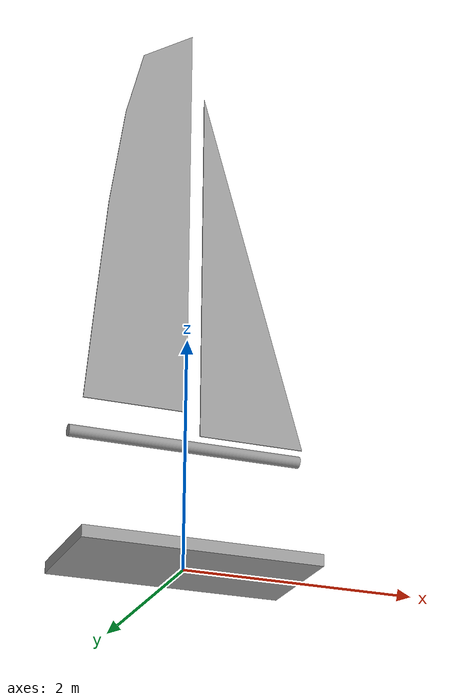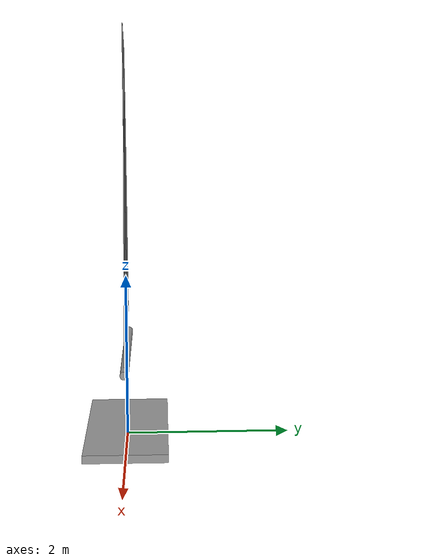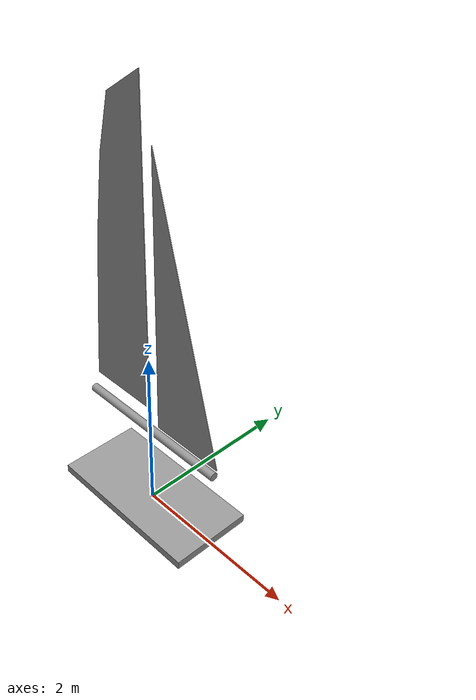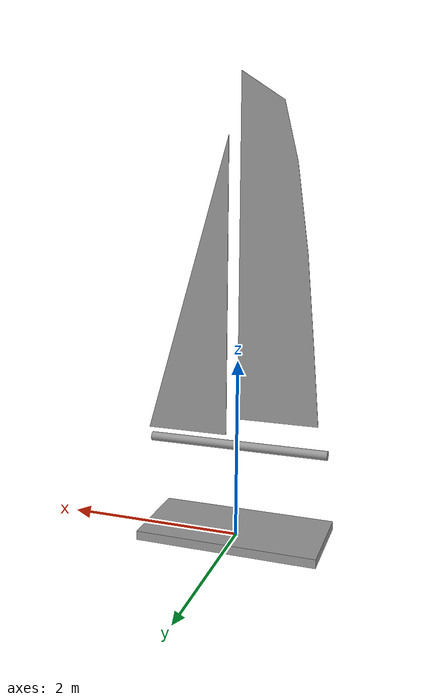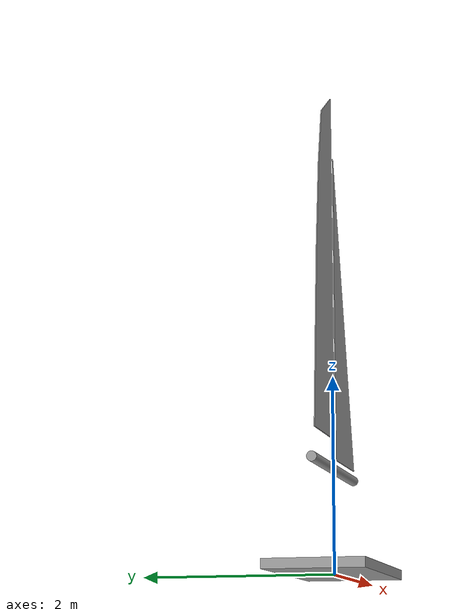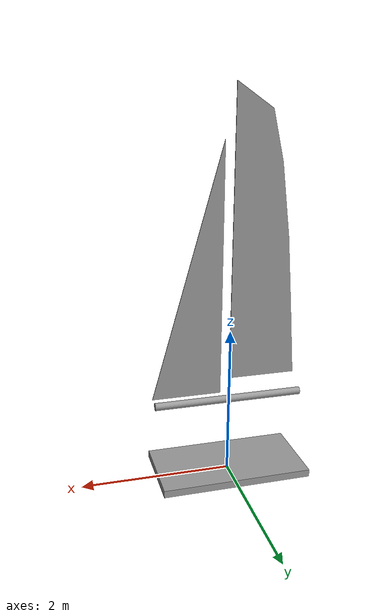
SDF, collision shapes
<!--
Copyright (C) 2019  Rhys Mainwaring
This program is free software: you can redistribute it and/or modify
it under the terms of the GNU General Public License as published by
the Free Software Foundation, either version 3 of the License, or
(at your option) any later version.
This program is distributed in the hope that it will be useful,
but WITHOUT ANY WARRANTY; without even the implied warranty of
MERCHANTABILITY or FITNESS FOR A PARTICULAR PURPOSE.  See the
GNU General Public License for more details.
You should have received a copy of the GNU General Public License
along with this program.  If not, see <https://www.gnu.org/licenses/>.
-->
<?xml version='1.0'?>
<sdf version='1.6'>
  <model name='rs750_rig'>
    <pose>0 0 0.05 0 0 0</pose>
    <static>false</static>

    <!-- Controllers -->
    <plugin name="base_controller" filename="libLinkJointControllerPlugin.so">
      <input_topic>/cmd_vel</input_topic>
      <link_name>__default__</link_name>
      <link_scale>0</link_scale>
      <link_type>velocity</link_type>
      <link_pid>1000 0 10</link_pid>
      <joint_name>base_joint</joint_name>
      <joint_scale>0.01</joint_scale>
      <joint_type>position</joint_type>
      <joint_pid>10000 0 2000</joint_pid>
    </plugin>

    <plugin name="main_sail_controller" filename="libLinkJointControllerPlugin.so">
      <input_topic>/cmd_vel2</input_topic>
      <link_name>__default__</link_name>
      <link_scale>0</link_scale>
      <link_type>velocity</link_type>
      <link_pid>1000 0 10</link_pid>
      <joint_name>main_sail_joint</joint_name>
      <joint_scale>0.01</joint_scale>
      <joint_type>limit</joint_type>
      <joint_pid>1000 0 10</joint_pid>
    </plugin>

    <plugin name="jib_sail_controller" filename="libLinkJointControllerPlugin.so">
      <input_topic>/cmd_vel2</input_topic>
      <link_name>__default__</link_name>
      <link_scale>0</link_scale>
      <link_type>velocity</link_type>
      <link_pid>1000 0 10</link_pid>
      <joint_name>jib_sail_joint</joint_name>
      <joint_scale>0.01</joint_scale>
      <joint_type>limit</joint_type>
      <joint_pid>1000 0 10</joint_pid>
    </plugin>

    <!-- Lift / Drag -->
    <plugin name="main_sail_liftdrag" filename="libSailPlugin.so">
      <a0>0.0</a0>
      <cla>6.2832</cla>
      <alpha_stall>0.1592</alpha_stall>
      <cla_stall>-0.7083</cla_stall>
      <cda>0.63662</cda>
      <area>1.81</area>
      <fluid_density>1.2</fluid_density>
      <forward>1 0 0</forward>
      <upward>0 1 0</upward>
      <cp>-0.30875 0 1.30625</cp>
      <link_name>main_sail_link</link_name>
      <radial_symmetry>true</radial_symmetry>
      <topic>lift_drag</topic>
    </plugin>

    <plugin name="jib_sail_liftdrag" filename="libSailPlugin.so">
      <a0>0.0</a0>
      <cla>6.2832</cla>
      <alpha_stall>0.1592</alpha_stall>
      <cla_stall>-0.7083</cla_stall>
      <cda>0.63662</cda>
      <area>1.43</area>
      <fluid_density>1.2</fluid_density>
      <forward>1 0 0</forward>
      <upward>0 1 0</upward>
      <cp>-0.605666667 0 1.20528</cp>
      <link_name>jib_sail_link</link_name>
      <radial_symmetry>true</radial_symmetry>
      <topic>lift_drag</topic>
    </plugin>

    <!-- Base -->
    <link name="base_link">
      <visual name="base_visual">
        <pose>0 0 0 0 0 0</pose>
        <geometry>
          <box>
            <size>2 1 0.1</size>
          </box>
        </geometry>
        <material>
          <script>
            <name>Gazebo/Gray</name>
          </script>
        </material>
      </visual>
      <visual name="front_support_visual">
        <pose>0.995 0 0.55 0 0 0</pose>
        <geometry>
          <box>
            <size>0.01 0.1 1</size>
          </box>
        </geometry>
        <material>
          <script>
            <name>Gazebo/Gray</name>
          </script>
        </material>
      </visual>
      <visual name="back_support_visual">
        <pose>-0.995 0 0.55 0 0 0</pose>
        <geometry>
          <box>
            <size>0.01 0.1 1</size>
          </box>
        </geometry>
        <material>
          <script>
            <name>Gazebo/Gray</name>
          </script>
        </material>
      </visual>

      <collision name="base_collision">
        <pose>0 0 0 0 0 0</pose>
        <geometry>
          <box>
            <size>2 1 0.1</size>
          </box>
        </geometry>
      </collision>

      <inertial>
        <pose>0 0 0 0 0 0</pose>
        <mass>1000</mass>
        <inertia>
          <ixx>84</ixx>
          <ixy>0</ixy>
          <iyy>334</iyy>
          <iyz>0</iyz>
          <izz>416</izz>
        </inertia>
      </inertial>
    </link>

    <joint type="revolute" name="base_joint">
      <pose>0 0 0 0 0 0</pose>
      <child>base_link</child>
      <parent>world</parent>
      <axis>
        <xyz>0 0 1</xyz>
        <initial_position>0</initial_position>
      </axis>
      <sensor name="base_force_torque" type="force_torque">
        <always_on>true</always_on>
        <update_rate>30</update_rate>
        <visualize>true</visualize>
      </sensor>
    </joint>

    <!-- Platform -->
    <link name="platform_link">
      <pose>0 0 1 0 0 0</pose>
      <visual name="platform_visual">
        <pose>0 0 0 0 1.57079 0</pose>
        <geometry>
          <cylinder>
            <radius>0.05</radius>
            <length>1.98</length>
          </cylinder>
        </geometry>
        <material>
          <script>
            <name>Gazebo/Gray</name>
          </script>
        </material>
      </visual>

      <visual name="counterweight_visual">
        <pose>0 0 -0.2 0 1.57079 0</pose>
        <geometry>
          <cylinder>
            <radius>0.1</radius>
            <length>1</length>
          </cylinder>
        </geometry>
        <material>
          <script>
            <name>Gazebo/Gray</name>
          </script>
        </material>
      </visual>

      <visual name="counterweight_support_visual">
        <pose>0 0 -0.25 0 0 0</pose>
        <geometry>
          <box>
            <size>1 0.01 0.5</size>
          </box>
        </geometry>
        <material>
          <script>
            <name>Gazebo/Gray</name>
          </script>
        </material>
      </visual>

      <visual name="mast_visual">
        <pose>0 0 2.009375 0 0 0</pose>
        <geometry>
          <mesh>
            <uri>model://rs750_rig/meshes/rs750_mast.stl</uri>
          </mesh>
        </geometry>
        <material>
          <script>
            <name>Gazebo/Gray</name>
          </script>
        </material>
      </visual>

      <collision name="platform_collision">
        <pose>0 0 0 0 1.57079 0</pose>
        <geometry>
          <cylinder>
            <radius>0.05</radius>
            <length>2</length>
          </cylinder>
        </geometry>
      </collision>

      <!-- Inertial is for the counterweight -->
      <inertial>
        <pose>0 0 -0.2 0 0 0</pose>
        <mass>1000</mass>
        <inertia>
          <ixx>5</ixx>
          <ixy>0</ixy>
          <iyy>85</iyy>
          <iyz>0</iyz>
          <izz>85</izz>
        </inertia>
      </inertial>
    </link>

    <joint type="revolute" name="platform_joint">
      <pose>0 0 0 0 0 0</pose>
      <child>platform_link</child>
      <parent>base_link</parent>
      <axis>
        <xyz>1 0 0</xyz>
        <initial_position>0</initial_position>
      </axis>
      <dynamics>
        <damping>3</damping>
        <friction>1</friction>
      </dynamics>
      <sensor name="platform_force_torque" type="force_torque">
        <always_on>true</always_on>
        <update_rate>30</update_rate>
        <visualize>true</visualize>
      </sensor>
    </joint>

    <!-- Main Sail -->
    <link name="main_sail_link">
      <pose>0 0 1.3 0 0 0</pose>

      <visual name="main_sail_visual">
        <geometry>
          <mesh>
            <uri>model://rs750_rig/meshes/rs750_main_sail.stl</uri>
          </mesh>
        </geometry>
        <material>
          <script>
            <name>Gazebo/Gray</name>
          </script>
        </material>
      </visual>

      <visual name="main_boom_visual">
        <pose>-0.463125 0 -0.01125 0 0 0</pose>
        <geometry>
          <mesh>
            <uri>model://rs750_rig/meshes/rs750_main_boom.stl</uri>
          </mesh>
        </geometry>
        <material>
          <script>
            <name>Gazebo/Gray</name>
          </script>
        </material>
      </visual>

      <collision name="main_sail_collision">
        <geometry>
          <mesh>
            <uri>model://rs750_rig/meshes/rs750_main_sail.stl</uri>
          </mesh>
        </geometry>
      </collision>

      <inertial>
        <pose>-0.30875 0 1.30625 0 0 0</pose>
        <mass>0.1</mass>
        <inertia>
          <ixx>0.127</ixx>
          <ixy>0</ixy>
          <iyy>0.135</iyy>
          <iyz>0</iyz>
          <izz>0.00715</izz>
        </inertia>
      </inertial>

      <sensor name="main_sail_anemometer" type="anemometer">
        <pose>-0.30875 0 1.30625 0 0 0</pose>
        <always_on>true</always_on>
        <update_rate>50</update_rate>
        <topic>main_sail_anemometer</topic>
      </sensor>
      <visual name="main_sail_anemometer_visual">
        <pose>-0.30875 0 1.30625 0 0 0</pose>
        <geometry>
          <cylinder>
            <radius>0.025</radius>
            <length>0.025</length>
          </cylinder>
        </geometry>
        <material>
          <script>
            <name>Gazebo/Red</name>
          </script>
        </material>
      </visual>

    </link>

    <joint type="revolute" name="main_sail_joint">
      <pose>0 0 0 0 0 0</pose>
      <child>main_sail_link</child>
      <parent>platform_link</parent>
      <axis>
        <xyz>0 0 1</xyz>
        <initial_position>0</initial_position>
        <limit>
          <lower>-1.7</lower>
          <upper>1.7</upper>
        </limit>
      </axis>
      <sensor name="main_sail_force_torque" type="force_torque">
        <always_on>true</always_on>
        <update_rate>30</update_rate>
        <visualize>true</visualize>
      </sensor>
    </joint>

    <!-- Jib Sail -->
    <link name="jib_sail_link">
      <pose>1.03125 0 1.105 0 0 0</pose>

      <visual name="jib_sail_visual">
        <geometry>
          <mesh>
            <uri>model://rs750_rig/meshes/rs750_jib_sail.stl</uri>
          </mesh>
        </geometry>
        <material>
          <script>
            <name>Gazebo/Gray</name>
          </script>
        </material>
      </visual>

      <visual name="jib_boom_visual">
        <pose>-0.463125 0 -0.01125 0 0 0</pose>
        <geometry>
          <mesh>
            <uri>model://rs750_rig/meshes/rs750_jib_boom.stl</uri>
          </mesh>
        </geometry>
        <material>
          <script>
            <name>Gazebo/Gray</name>
          </script>
        </material>
      </visual>

      <collision name="jib_sail_collision">
        <geometry>
          <mesh>
            <uri>model://rs750_rig/meshes/rs750_jib_sail.stl</uri>
          </mesh>
        </geometry>
      </collision>

      <inertial>
        <pose>-0.605666667 0 1.20528 0 0 0</pose>
        <mass>0.1</mass>
        <inertia>
          <ixx>0.0918</ixx>
          <ixy>0</ixy>
          <iyy>0.0980</iyy>
          <iyz>0</iyz>
          <izz>0.00620</izz>
        </inertia>
      </inertial>

      <sensor name="jib_sail_anemometer" type="anemometer">
        <pose>-0.605666667 0 1.20528 0 0 0</pose>
        <always_on>true</always_on>
        <update_rate>50</update_rate>
        <topic>jib_sail_anemometer</topic>
      </sensor>
      <visual name="jib_sail_anemometer_visual">
        <pose>-0.605666667 0 1.20528 0 0 0</pose>
        <geometry>
          <cylinder>
            <radius>0.025</radius>
            <length>0.025</length>
          </cylinder>
        </geometry>
        <material>
          <script>
            <name>Gazebo/Red</name>
          </script>
        </material>
      </visual>

    </link>

    <joint type="revolute" name="jib_sail_joint">
      <pose>0 0 0 0 0 0</pose>
      <child>jib_sail_link</child>
      <parent>platform_link</parent>
      <axis>
        <xyz>-0.271652766 0 0.962395332</xyz>
        <initial_position>0</initial_position>
        <limit>
          <lower>-1.7</lower>
          <upper>1.7</upper>
        </limit>
      </axis>
      <sensor name="jib_sail_force_torque" type="force_torque">
        <always_on>true</always_on>
        <update_rate>30</update_rate>
        <visualize>true</visualize>
      </sensor>
    </joint>

  </model>
</sdf>
